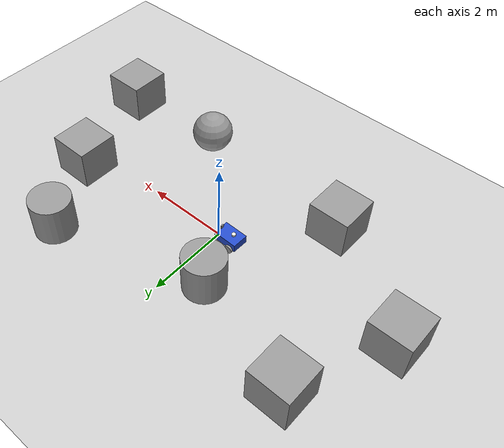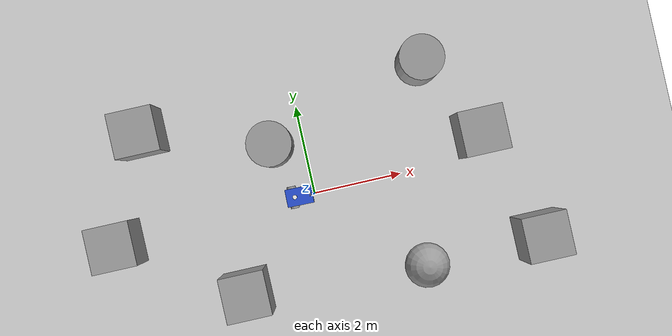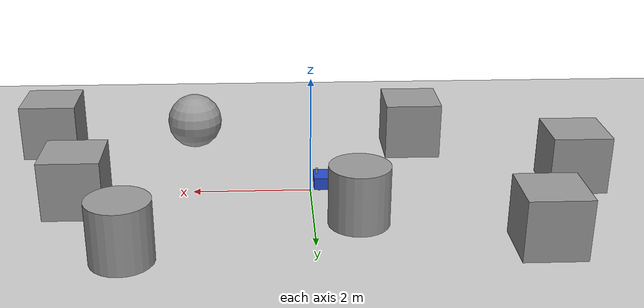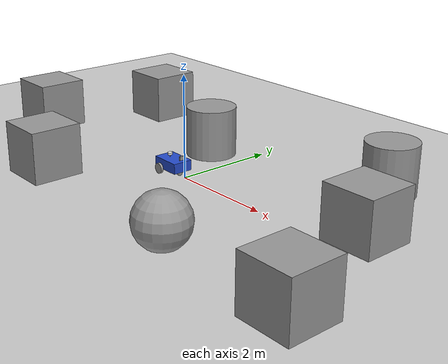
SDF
<sdf version="1.7">
 <world name="default">
  <light name="sun" type="directional">
   <pose>0 0 10 0 -0 0</pose>
   <diffuse>0.8 0.8 0.8 1</diffuse>
   <specular>0.2 0.2 0.2 1</specular>
   <attenuation>
    <range>1000</range>
    <constant>0.9</constant>
    <linear>0.01</linear>
    <quadratic>0.001</quadratic>
   </attenuation>
   <direction>-0.5 0.1 -0.9</direction>
   <spot><inner_angle>0</inner_angle><outer_angle>0</outer_angle><falloff>0</falloff></spot>
  </light>
  <model name="ground_plane">
   <static>1</static>
   <link name="link">
    <collision name="collision">
     <geometry><plane><normal>0 0 1</normal><size>100 100</size></plane></geometry>
     <surface><friction><ode><mu>100</mu><mu2>50</mu2></ode></friction></surface>
    </collision>
    <visual name="visual">
     <cast_shadows>0</cast_shadows>
     <geometry><plane><normal>0 0 1</normal><size>100 100</size></plane></geometry>
     <material>
      <script><uri>file://media/materials/scripts/gazebo.material</uri><name>Gazebo/Grey</name></script>
     </material>
    </visual>
   </link>
  </model>
  <gravity>0 0 -9.8</gravity>
  <magnetic_field>6e-06 2.3e-05 -4.2e-05</magnetic_field>
  <atmosphere type="adiabatic"/>
  <physics type="ode">
   <max_step_size>0.001</max_step_size>
   <real_time_factor>1</real_time_factor>
   <real_time_update_rate>1000</real_time_update_rate>
  </physics>
  <scene><ambient>0.4 0.4 0.4 1</ambient><background>0.7 0.7 0.7 1</background><shadows>1</shadows></scene>
  <audio><device>default</device></audio>
  <spherical_coordinates>
   <surface_model>EARTH_WGS84</surface_model>
   <latitude_deg>0</latitude_deg>
   <longitude_deg>0</longitude_deg>
   <elevation>0</elevation>
   <heading_deg>0</heading_deg>
  </spherical_coordinates>
  <model name="my_robot">
   <link name="base_footprint">
    <inertial>
     <pose>0.016071 0 0.189554 0 -0 0</pose>
     <mass>5.6</mass>
     <inertia>
      <ixx>0.682104</ixx>
      <ixy>0</ixy>
      <ixz>0.0157098</ixz>
      <iyy>0.901657</iyy>
      <iyz>0</iyz>
      <izz>0.355012</izz>
     </inertia>
    </inertial>
    <collision name="base_footprint_fixed_joint_lump__base_link_collision">
     <pose>0 0 0.2 0 -0 0</pose>
     <geometry><box><size>0.6 0.4 0.2</size></box></geometry>
    </collision>
    <collision name="base_footprint_fixed_joint_lump__caster_wheel_link_collision_1">
     <pose>0.2 0 0.05 0 -0 0</pose>
     <geometry><sphere><radius>0.05</radius></sphere></geometry>
     <surface><friction><ode><mu>0.1</mu><mu2>0.1</mu2></ode></friction></surface>
    </collision>
    <collision name="base_footprint_fixed_joint_lump__laser_frame_collision_2">
     <pose>-0.1 0 0.365 0 -0 0</pose>
     <geometry><cylinder><length>0.04</length><radius>0.05</radius></cylinder></geometry>
    </collision>
    <visual name="base_footprint_fixed_joint_lump__base_link_visual">
     <pose>0 0 0.2 0 -0 0</pose>
     <geometry><box><size>0.6 0.4 0.2</size></box></geometry>
     <material>
      <script><name>Gazebo/Blue</name><uri>file://media/materials/scripts/gazebo.material</uri></script>
     </material>
    </visual>
    <visual name="base_footprint_fixed_joint_lump__caster_wheel_link_visual_1">
     <pose>0.2 0 0.05 0 -0 0</pose>
     <geometry><sphere><radius>0.05</radius></sphere></geometry>
     <material>
      <script><name>Gazebo/Grey</name><uri>file://media/materials/scripts/gazebo.material</uri></script>
     </material>
    </visual>
    <visual name="base_footprint_fixed_joint_lump__camera_link_visual_2">
     <pose>0.25 0 0.365 0 -0 0</pose>
     <geometry><box><size>0.03 0.08 0.08</size></box></geometry>
     <material>
      <script><name>Gazebo/Grey</name><uri>file://media/materials/scripts/gazebo.material</uri></script>
     </material>
    </visual>
    <visual name="base_footprint_fixed_joint_lump__camera_link_visual_3">
     <pose>0.25 0 0.315 0 -0 0</pose>
     <geometry><cylinder><length>0.05</length><radius>0.002</radius></cylinder></geometry>
     <material>
      <script><name>Gazebo/Grey</name><uri>file://media/materials/scripts/gazebo.material</uri></script>
     </material>
    </visual>
    <visual name="base_footprint_fixed_joint_lump__laser_frame_visual_4">
     <pose>-0.1 0 0.365 0 -0 0</pose>
     <geometry><cylinder><length>0.04</length><radius>0.05</radius></cylinder></geometry>
     <material>
      <script><name>Gazebo/White</name><uri>file://media/materials/scripts/gazebo.material</uri></script>
     </material>
    </visual>
    <visual name="base_footprint_fixed_joint_lump__laser_frame_visual_5">
     <pose>-0.1 0 0.315 0 -0 0</pose>
     <geometry><cylinder><length>0.05</length><radius>0.01</radius></cylinder></geometry>
     <material>
      <script><name>Gazebo/White</name><uri>file://media/materials/scripts/gazebo.material</uri></script>
     </material>
    </visual>
    <sensor name="camera" type="camera">
     <visualize>1</visualize>
     <update_rate>10</update_rate>
     <camera>
      <horizontal_fov>1.089</horizontal_fov>
      <image><format>R8G8B8</format><width>640</width><height>480</height></image>
      <clip><near>0.05</near><far>8</far></clip>
     </camera>
     <plugin name="camera_controller" filename="libgazebo_ros_camera.so">
      <frame_name>camera_link_optical</frame_name>
     </plugin>
     <pose>0.25 0 0.365 0 -0 0</pose>
    </sensor>
    <sensor name="laser" type="ray">
     <visualize>0</visualize>
     <update_rate>10</update_rate>
     <ray>
      <scan>
       <horizontal>
        <samples>360</samples>
        <resolution>1</resolution>
        <min_angle>-3.14</min_angle>
        <max_angle>3.14</max_angle>
       </horizontal>
       <vertical><samples>1</samples><min_angle>0</min_angle><max_angle>0</max_angle></vertical>
      </scan>
      <range><min>0.3</min><max>12</max><resolution>0.01</resolution></range>
     </ray>
     <plugin name="laser_controller" filename="libgazebo_ros_ray_sensor.so">
      <ros><argument>~/out:=scan</argument></ros>
      <output_type>sensor_msgs/LaserScan</output_type>
      <frame_name>laser_frame</frame_name>
     </plugin>
     <pose>-0.1 0 0.365 0 -0 0</pose>
    </sensor>
   </link>
   <joint name="base_left_wheel_joint" type="revolute">
    <pose relative_to="base_footprint">-0.15 0.225 0.1 0 -0 0</pose>
    <parent>base_footprint</parent>
    <child>left_wheel_link</child>
    <axis>
     <xyz>0 1 0</xyz>
     <limit><lower>-1e+16</lower><upper>1e+16</upper></limit>
     <dynamics><spring_reference>0</spring_reference><spring_stiffness>0</spring_stiffness></dynamics>
    </axis>
   </joint>
   <link name="left_wheel_link">
    <pose relative_to="base_left_wheel_joint">0 0 0 0 -0 0</pose>
    <inertial>
     <pose>0 0 0 1.5708 -0 0</pose>
     <mass>1</mass>
     <inertia><ixx>0.0108333</ixx><ixy>0</ixy><ixz>0</ixz><iyy>0.0108333</iyy><iyz>0</iyz><izz>0.02</izz></inertia>
    </inertial>
    <collision name="left_wheel_link_collision">
     <pose>0 0 0 1.5708 -0 0</pose>
     <geometry><cylinder><length>0.05</length><radius>0.1</radius></cylinder></geometry>
    </collision>
    <visual name="left_wheel_link_visual">
     <pose>0 0 0 1.5708 -0 0</pose>
     <geometry><cylinder><length>0.05</length><radius>0.1</radius></cylinder></geometry>
     <material>
      <script><name>Gazebo/Grey</name><uri>file://media/materials/scripts/gazebo.material</uri></script>
     </material>
    </visual>
   </link>
   <joint name="base_right_wheel_joint" type="revolute">
    <pose relative_to="base_footprint">-0.15 -0.225 0.1 0 -0 0</pose>
    <parent>base_footprint</parent>
    <child>right_wheel_link</child>
    <axis>
     <xyz>0 1 0</xyz>
     <limit><lower>-1e+16</lower><upper>1e+16</upper></limit>
     <dynamics><spring_reference>0</spring_reference><spring_stiffness>0</spring_stiffness></dynamics>
    </axis>
   </joint>
   <link name="right_wheel_link">
    <pose relative_to="base_right_wheel_joint">0 0 0 0 -0 0</pose>
    <inertial>
     <pose>0 0 0 1.5708 -0 0</pose>
     <mass>1</mass>
     <inertia><ixx>0.0108333</ixx><ixy>0</ixy><ixz>0</ixz><iyy>0.0108333</iyy><iyz>0</iyz><izz>0.02</izz></inertia>
    </inertial>
    <collision name="right_wheel_link_collision">
     <pose>0 0 0 1.5708 -0 0</pose>
     <geometry><cylinder><length>0.05</length><radius>0.1</radius></cylinder></geometry>
    </collision>
    <visual name="right_wheel_link_visual">
     <pose>0 0 0 1.5708 -0 0</pose>
     <geometry><cylinder><length>0.05</length><radius>0.1</radius></cylinder></geometry>
     <material>
      <script><name>Gazebo/Grey</name><uri>file://media/materials/scripts/gazebo.material</uri></script>
     </material>
    </visual>
   </link>
   <static>0</static>
   <plugin name="gazebo_ros2_control" filename="libgazebo_ros2_control.so">
    <parameters>/home/quandz/quantest_ws/install/my_robot_bringup/share/my_robot_bringup/config/quan_controller.yaml</parameters>
   </plugin>
   <pose>-0.353189 0.008145 0 0 0 -0.017618</pose>
  </model>
  <model name="unit_cylinder">
   <pose>-0.716862 1.26335 0.499998 3e-06 -4e-06 0</pose>
   <link name="link">
    <inertial>
     <mass>1</mass>
     <inertia><ixx>0.145833</ixx><ixy>0</ixy><ixz>0</ixz><iyy>0.145833</iyy><iyz>0</iyz><izz>0.125</izz></inertia>
    </inertial>
    <collision name="collision">
     <geometry><cylinder><radius>0.5</radius><length>1</length></cylinder></geometry>
    </collision>
    <visual name="visual">
     <geometry><cylinder><radius>0.5</radius><length>1</length></cylinder></geometry>
     <material>
      <script><name>Gazebo/Grey</name><uri>file://media/materials/scripts/gazebo.material</uri></script>
     </material>
    </visual>
   </link>
  </model>
  <model name="unit_box">
   <pose>-1.94589 -1.8451 0.499995 0 1e-05 0</pose>
   <link name="link">
    <inertial>
     <mass>1</mass>
     <inertia>
      <ixx>0.166667</ixx>
      <ixy>0</ixy>
      <ixz>0</ixz>
      <iyy>0.166667</iyy>
      <iyz>0</iyz>
      <izz>0.166667</izz>
     </inertia>
    </inertial>
    <collision name="collision"><geometry><box><size>1 1 1</size></box></geometry></collision>
    <visual name="visual">
     <geometry><box><size>1 1 1</size></box></geometry>
     <material>
      <script><name>Gazebo/Grey</name><uri>file://media/materials/scripts/gazebo.material</uri></script>
     </material>
    </visual>
   </link>
  </model>
  <model name="unit_sphere">
   <pose>2.08869 -2.10236 0.5 0 -0 0</pose>
   <link name="link">
    <inertial>
     <mass>1</mass>
     <inertia><ixx>0.1</ixx><ixy>0</ixy><ixz>0</ixz><iyy>0.1</iyy><iyz>0</iyz><izz>0.1</izz></inertia>
    </inertial>
    <collision name="collision"><geometry><sphere><radius>0.5</radius></sphere></geometry></collision>
    <visual name="visual">
     <geometry><sphere><radius>0.5</radius></sphere></geometry>
     <material>
      <script><name>Gazebo/Grey</name><uri>file://media/materials/scripts/gazebo.material</uri></script>
     </material>
    </visual>
   </link>
  </model>
  <model name="unit_cylinder_0">
   <pose>2.90826 2.3577 0.499993 -3e-06 -3e-06 0</pose>
   <link name="link">
    <inertial>
     <mass>1</mass>
     <inertia><ixx>0.145833</ixx><ixy>0</ixy><ixz>0</ixz><iyy>0.145833</iyy><iyz>0</iyz><izz>0.125</izz></inertia>
    </inertial>
    <collision name="collision">
     <geometry><cylinder><radius>0.5</radius><length>1</length></cylinder></geometry>
    </collision>
    <visual name="visual">
     <geometry><cylinder><radius>0.5</radius><length>1</length></cylinder></geometry>
     <material>
      <script><name>Gazebo/Grey</name><uri>file://media/materials/scripts/gazebo.material</uri></script>
     </material>
    </visual>
   </link>
  </model>
  <model name="unit_box_0">
   <pose>3.87598 0.527243 0.499995 -1e-05 -0 -0</pose>
   <link name="link">
    <inertial>
     <mass>1</mass>
     <inertia>
      <ixx>0.166667</ixx>
      <ixy>0</ixy>
      <ixz>0</ixz>
      <iyy>0.166667</iyy>
      <iyz>0</iyz>
      <izz>0.166667</izz>
     </inertia>
    </inertial>
    <collision name="collision"><geometry><box><size>1 1 1</size></box></geometry></collision>
    <visual name="visual">
     <geometry><box><size>1 1 1</size></box></geometry>
     <material>
      <script><name>Gazebo/Grey</name><uri>file://media/materials/scripts/gazebo.material</uri></script>
     </material>
    </visual>
   </link>
  </model>
  <model name="unit_box_1">
   <pose>4.71274 -2.01677 0.499995 0 1e-05 0</pose>
   <link name="link">
    <inertial>
     <mass>1</mass>
     <inertia>
      <ixx>0.166667</ixx>
      <ixy>0</ixy>
      <ixz>0</ixz>
      <iyy>0.166667</iyy>
      <iyz>0</iyz>
      <izz>0.166667</izz>
     </inertia>
    </inertial>
    <collision name="collision"><geometry><box><size>1 1 1</size></box></geometry></collision>
    <visual name="visual">
     <geometry><box><size>1 1 1</size></box></geometry>
     <material>
      <script><name>Gazebo/Grey</name><uri>file://media/materials/scripts/gazebo.material</uri></script>
     </material>
    </visual>
   </link>
  </model>
  <model name="unit_box_2">
   <pose>-3.51609 2.15803 0.499995 -1e-05 -0 0</pose>
   <link name="link">
    <inertial>
     <mass>1</mass>
     <inertia>
      <ixx>0.166667</ixx>
      <ixy>0</ixy>
      <ixz>0</ixz>
      <iyy>0.166667</iyy>
      <iyz>0</iyz>
      <izz>0.166667</izz>
     </inertia>
    </inertial>
    <collision name="collision"><geometry><box><size>1 1 1</size></box></geometry></collision>
    <visual name="visual">
     <geometry><box><size>1 1 1</size></box></geometry>
     <material>
      <script><name>Gazebo/Grey</name><uri>file://media/materials/scripts/gazebo.material</uri></script>
     </material>
    </visual>
   </link>
  </model>
  <model name="unit_box_3">
   <pose>-4.5474 -0.16696 0.5 0 -0 0</pose>
   <link name="link">
    <inertial>
     <mass>1</mass>
     <inertia>
      <ixx>0.166667</ixx>
      <ixy>0</ixy>
      <ixz>0</ixz>
      <iyy>0.166667</iyy>
      <iyz>0</iyz>
      <izz>0.166667</izz>
     </inertia>
    </inertial>
    <collision name="collision"><geometry><box><size>1 1 1</size></box></geometry></collision>
    <visual name="visual">
     <geometry><box><size>1 1 1</size></box></geometry>
     <material>
      <script><name>Gazebo/Grey</name><uri>file://media/materials/scripts/gazebo.material</uri></script>
     </material>
    </visual>
   </link>
  </model>
 </world>
</sdf>
